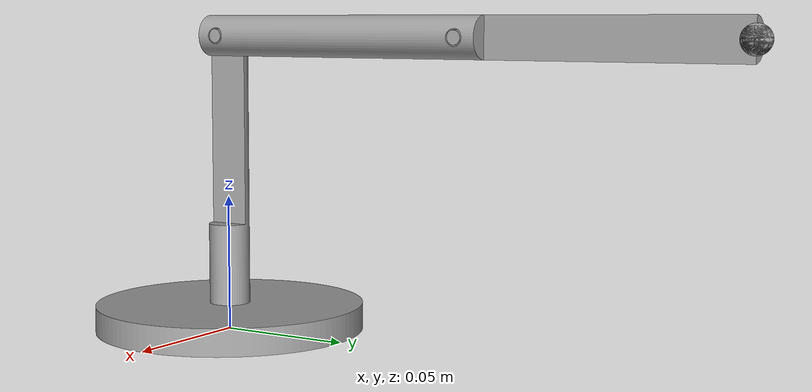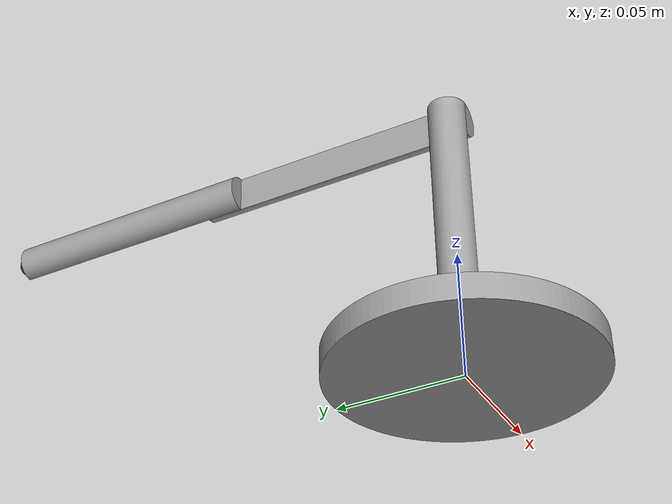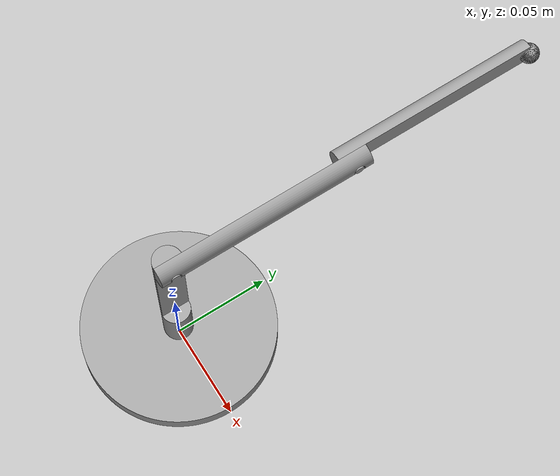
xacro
<?xml version="1.0" ?>
<robot name="moveit_sample" xmlns:xacro="http://www.ros.org/wiki/xacro">

<xacro:include filename="$(find moveit_sample_description)/urdf/materials.xacro" />
<xacro:include filename="$(find moveit_sample_description)/urdf/moveit_sample.trans" />
<xacro:include filename="$(find moveit_sample_description)/urdf/moveit_sample.gazebo" />

<link name="dummy">
</link>

<link name="base_link">
  <inertial>
    <origin xyz="-7.237528875152536e-18 -1.447505775030507e-17 0.005" rpy="0 0 0"/>
    <mass value="0.6165375582669969"/>
    <inertia ixx="0.00039" iyy="0.00039" izz="0.000771" ixy="-0.0" iyz="-0.0" ixz="0.0"/>
  </inertial>
  <visual>
    <origin xyz="0 0 0" rpy="0 0 0"/>
    <geometry>
      <mesh filename="package://moveit_sample_description/meshes/base_link.stl" scale="0.001 0.001 0.001"/>
    </geometry>
    <material name="_"/>
  </visual>
  <collision>
    <origin xyz="0 0 0" rpy="0 0 0"/>
    <geometry>
      <mesh filename="package://moveit_sample_description/meshes/base_link.stl" scale="0.001 0.001 0.001"/>
    </geometry>
  </collision>
</link>

<link name="part1_1">
  <inertial>
    <origin xyz="-0.0017277137374306876 6.723447632535409e-13 0.04595059880172599" rpy="0 0 0"/>
    <mass value="0.09652666146617676"/>
    <inertia ixx="0.000103" iyy="0.000102" izz="2e-06" ixy="-0.0" iyz="-0.0" ixz="4e-06"/>
  </inertial>
  <visual>
    <origin xyz="-0.0 -0.0 -0.01" rpy="0 0 0"/>
    <geometry>
      <mesh filename="package://moveit_sample_description/meshes/part1_1.stl" scale="0.001 0.001 0.001"/>
    </geometry>
    <material name="_"/>
  </visual>
  <collision>
    <origin xyz="-0.0 -0.0 -0.01" rpy="0 0 0"/>
    <geometry>
      <mesh filename="package://moveit_sample_description/meshes/part1_1.stl" scale="0.001 0.001 0.001"/>
    </geometry>
  </collision>
</link>

<link name="part2_1">
  <inertial>
    <origin xyz="0.0031621405528323497 0.050000000055879366 -5.586570095417187e-11" rpy="0 0 0"/>
    <mass value="0.07650347985448655"/>
    <inertia ixx="8.1e-05" iyy="1e-06" izz="8e-05" ixy="-0.0" iyz="-0.0" ixz="-0.0"/>
  </inertial>
  <visual>
    <origin xyz="-0.0 -0.0 -0.11" rpy="0 0 0"/>
    <geometry>
      <mesh filename="package://moveit_sample_description/meshes/part2_1.stl" scale="0.001 0.001 0.001"/>
    </geometry>
    <material name="_"/>
  </visual>
  <collision>
    <origin xyz="-0.0 -0.0 -0.11" rpy="0 0 0"/>
    <geometry>
      <mesh filename="package://moveit_sample_description/meshes/part2_1.stl" scale="0.001 0.001 0.001"/>
    </geometry>
  </collision>
</link>

<link name="part3_1">
  <inertial>
    <origin xyz="-0.00307725002425259 0.04554389318565036 -5.588342288920245e-11" rpy="0 0 0"/>
    <mass value="0.0757185188746656"/>
    <inertia ixx="7.5e-05" iyy="1e-06" izz="7.5e-05" ixy="0.0" iyz="-0.0" ixz="0.0"/>
  </inertial>
  <visual>
    <origin xyz="0.0 -0.1 -0.11" rpy="0 0 0"/>
    <geometry>
      <mesh filename="package://moveit_sample_description/meshes/part3_1.stl" scale="0.001 0.001 0.001"/>
    </geometry>
    <material name="_"/>
  </visual>
  <collision>
    <origin xyz="0.0 -0.1 -0.11" rpy="0 0 0"/>
    <geometry>
      <mesh filename="package://moveit_sample_description/meshes/part3_1.stl" scale="0.001 0.001 0.001"/>
    </geometry>
  </collision>
</link>

<link name="d_part1_1">
  <inertial>
    <origin xyz="-2.10969707193732e-33 5.587930118622353e-11 -5.5879384452950376e-11" rpy="0 0 0"/>
    <mass value="0.0005137812985558307"/>
    <inertia ixx="0.0" iyy="0.0" izz="0.0" ixy="0.0" iyz="0.0" ixz="-0.0"/>
  </inertial>
  <visual>
    <origin xyz="0.0 -0.2 -0.11" rpy="0 0 0"/>
    <geometry>
      <mesh filename="package://moveit_sample_description/meshes/d_part1_1.stl" scale="0.001 0.001 0.001"/>
    </geometry>
    <material name="_"/>
  </visual>
  <collision>
    <origin xyz="0.0 -0.2 -0.11" rpy="0 0 0"/>
    <geometry>
      <mesh filename="package://moveit_sample_description/meshes/d_part1_1.stl" scale="0.001 0.001 0.001"/>
    </geometry>
  </collision>
</link>

<link name="d_part2_1">
  <inertial>
    <origin xyz="-2.10969707193732e-33 5.587930118622353e-11 -5.5879384452950376e-11" rpy="0 0 0"/>
    <mass value="0.004110250388446646"/>
    <inertia ixx="0.0" iyy="0.0" izz="0.0" ixy="0.0" iyz="0.0" ixz="-0.0"/>
  </inertial>
  <visual>
    <origin xyz="0.0 -0.2 -0.11" rpy="0 0 0"/>
    <geometry>
      <mesh filename="package://moveit_sample_description/meshes/d_part2_1.stl" scale="0.001 0.001 0.001"/>
    </geometry>
    <material name="_"/>
  </visual>
  <collision>
    <origin xyz="0.0 -0.2 -0.11" rpy="0 0 0"/>
    <geometry>
      <mesh filename="package://moveit_sample_description/meshes/d_part2_1.stl" scale="0.001 0.001 0.001"/>
    </geometry>
  </collision>
</link>

<link name="d_part3_1">
  <inertial>
    <origin xyz="-2.10969707193732e-33 5.587930118622353e-11 -5.5879384452950376e-11" rpy="0 0 0"/>
    <mass value="0.004110250388446646"/>
    <inertia ixx="0.0" iyy="0.0" izz="0.0" ixy="0.0" iyz="0.0" ixz="-0.0"/>
  </inertial>
  <visual>
    <origin xyz="0.0 -0.2 -0.11" rpy="0 0 0"/>
    <geometry>
      <mesh filename="package://moveit_sample_description/meshes/d_part3_1.stl" scale="0.001 0.001 0.001"/>
    </geometry>
    <material name="_"/>
  </visual>
  <collision>
    <origin xyz="0.0 -0.2 -0.11" rpy="0 0 0"/>
    <geometry>
      <mesh filename="package://moveit_sample_description/meshes/d_part3_1.stl" scale="0.001 0.001 0.001"/>
    </geometry>
  </collision>
</link>

<joint name="dummy_joint" type="fixed">
  <parent link="dummy"/>
  <child link="base_link"/>
</joint>

<joint name="rev1" type="continuous">
  <origin xyz="0.0 0.0 0.01" rpy="0 0 0"/>
  <parent link="base_link"/>
  <child link="part1_1"/>
  <axis xyz="0.0 0.0 1.0"/>
</joint>

<joint name="rev2" type="continuous">
  <origin xyz="0.0 0.0 0.1" rpy="0 0 0"/>
  <parent link="part1_1"/>
  <child link="part2_1"/>
  <axis xyz="-1.0 0.0 0.0"/>
</joint>

<joint name="rev3" type="continuous">
  <origin xyz="-0.0 0.1 0.0" rpy="0 0 0"/>
  <parent link="part2_1"/>
  <child link="part3_1"/>
  <axis xyz="1.0 -0.0 0.0"/>
</joint>

<joint name="d_rev1" type="continuous">
  <origin xyz="0.0 0.1 0.0" rpy="0 0 0"/>
  <parent link="part3_1"/>
  <child link="d_part1_1"/>
  <axis xyz="1.0 0.0 0.0"/>
</joint>

<joint name="d_rev2" type="continuous">
  <origin xyz="0.0 0.0 0.0" rpy="0 0 0"/>
  <parent link="d_part1_1"/>
  <child link="d_part2_1"/>
  <axis xyz="-0.0 1.0 -0.0"/>
</joint>

<joint name="d_rev3" type="continuous">
  <origin xyz="0.0 0.0 0.0" rpy="0 0 0"/>
  <parent link="d_part2_1"/>
  <child link="d_part3_1"/>
  <axis xyz="-0.0 0.0 1.0"/>
</joint>

</robot>

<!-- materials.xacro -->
<robot name="moveit_sample" xmlns:xacro="http://www.ros.org/wiki/xacro" >

<material name="silver_default">
  <color rgba="0.700 0.700 0.700 1.000"/>
</material>
<material name="_">
  <color rgba="0.6274509803921569 0.6274509803921569 0.6274509803921569 1.0"/>
</material>

</robot>

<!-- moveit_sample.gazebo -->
<robot name="moveit_sample" xmlns:xacro="http://www.ros.org/wiki/xacro" >

<xacro:property name="body_color" value="Gazebo/Silver" />

<gazebo>
  <plugin name="control" filename="libgazebo_ros_control.so"/>
</gazebo>
<gazebo reference="base_link">
  <material>${body_color}</material>
  <mu1>0.2</mu1>
  <mu2>0.2</mu2>
  <selfCollide>true</selfCollide>
  <gravity>true</gravity>
</gazebo>

<gazebo reference="part1_1">
  <material>${body_color}</material>
  <mu1>0.2</mu1>
  <mu2>0.2</mu2>
  <selfCollide>true</selfCollide>
</gazebo>

<gazebo reference="part2_1">
  <material>${body_color}</material>
  <mu1>0.2</mu1>
  <mu2>0.2</mu2>
  <selfCollide>true</selfCollide>
</gazebo>

<gazebo reference="part3_1">
  <material>${body_color}</material>
  <mu1>0.2</mu1>
  <mu2>0.2</mu2>
  <selfCollide>true</selfCollide>
</gazebo>

<gazebo reference="d_part1_1">
  <material>${body_color}</material>
  <mu1>0.2</mu1>
  <mu2>0.2</mu2>
  <selfCollide>true</selfCollide>
</gazebo>

<gazebo reference="d_part2_1">
  <material>${body_color}</material>
  <mu1>0.2</mu1>
  <mu2>0.2</mu2>
  <selfCollide>true</selfCollide>
</gazebo>

<gazebo reference="d_part3_1">
  <material>${body_color}</material>
  <mu1>0.2</mu1>
  <mu2>0.2</mu2>
  <selfCollide>true</selfCollide>
</gazebo>

</robot>
